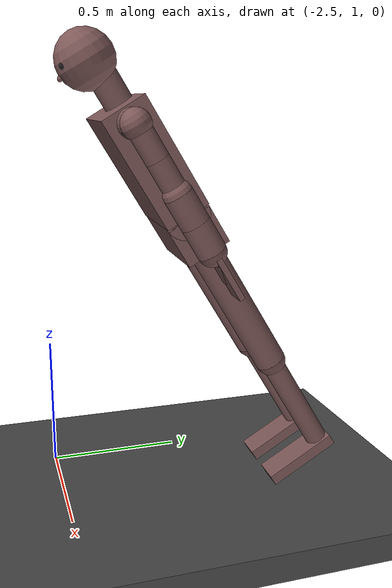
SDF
<sdf version="1.5">
 <world name="default">
  <model name="ground_plane">
   <static>1</static>
   <link name="link">
    <collision name="collision">
     <geometry><plane><normal>0 0 1</normal><size>100 100</size></plane></geometry>
     <surface><friction><ode><mu>100</mu><mu2>50</mu2></ode></friction></surface>
    </collision>
    <visual name="visual">
     <cast_shadows>0</cast_shadows>
     <geometry><plane><normal>0 0 1</normal><size>100 100</size></plane></geometry>
     <material>
      <script><uri>file://media/materials/scripts/gazebo.material</uri><name>Gazebo/Grey</name></script>
     </material>
    </visual>
    <velocity_decay><linear>0</linear><angular>0</angular></velocity_decay>
   </link>
  </model>
  <model name="asphalt_plane">
   <static>1</static>
   <link name="link">
    <collision name="collision"><geometry><box><size>20 20 0.1</size></box></geometry></collision>
    <visual name="visual">
     <cast_shadows>0</cast_shadows>
     <geometry><box><size>20 20 0.1</size></box></geometry>
     <material>
      <script>
       <uri>model://asphalt_plane/materials/scripts</uri>
       <uri>model://asphalt_plane/materials/textures</uri>
       <name>vrc/asphalt</name>
      </script>
     </material>
    </visual>
    <velocity_decay><linear>0</linear><angular>0</angular></velocity_decay>
   </link>
   <pose>0.076733 -0.110379 0 0 -0 0</pose>
  </model>
  <model name="victim175_hot_moving_0">
   <static>0</static>
   <self_collide>1</self_collide>
   <link name="head">
    <pose>0 0 1.625 0 -0 0</pose>
    <visual name="visual">
     <geometry><sphere><radius>0.1</radius></sphere></geometry>
     <material>
      <emissive>0.5 0.35 0.35 1</emissive>
      <ambient>0.5 0.35 0.35 1</ambient>
      <diffuse>0.5 0.35 0.35 1</diffuse>
      <specular>0 0 0 0</specular>
     </material>
    </visual>
    <collision name="collision"><geometry><sphere><radius>0.1</radius></sphere></geometry></collision>
    <visual name="visual_nose">
     <pose>0 -0.1 -0.01 0 -0 0</pose>
     <geometry><sphere><radius>0.01</radius></sphere></geometry>
     <material>
      <emissive>0.5 0.35 0.35 1</emissive>
      <ambient>0.5 0.35 0.35 1</ambient>
      <diffuse>0.5 0.35 0.35 1</diffuse>
      <specular>0 0 0 0</specular>
     </material>
    </visual>
    <visual name="visual_rEye">
     <pose>-0.05 -0.08 0.02 0 -0 0</pose>
     <geometry><sphere><radius>0.01</radius></sphere></geometry>
     <material>
      <script><uri>file://media/materials/scripts/gazebo.material</uri><name>Gazebo/Black</name></script>
     </material>
    </visual>
    <visual name="visual_lEye">
     <pose>0.05 -0.08 0.02 0 -0 0</pose>
     <geometry><sphere><radius>0.01</radius></sphere></geometry>
     <material>
      <script><uri>file://media/materials/scripts/gazebo.material</uri><name>Gazebo/Black</name></script>
     </material>
    </visual>
    <self_collide>1</self_collide>
    <inertial>
     <inertia><ixx>1</ixx><ixy>0</ixy><ixz>0</ixz><iyy>1</iyy><iyz>0</iyz><izz>1</izz></inertia>
     <mass>1</mass>
    </inertial>
   </link>
   <link name="neck">
    <pose>0 0.02 1.49 0 -0 0</pose>
    <visual name="visual">
     <geometry><cylinder><radius>0.05</radius><length>0.15</length></cylinder></geometry>
     <material>
      <emissive>0.5 0.35 0.35 1</emissive>
      <ambient>0.5 0.35 0.35 1</ambient>
      <diffuse>0.5 0.35 0.35 1</diffuse>
      <specular>0 0 0 0</specular>
     </material>
    </visual>
    <collision name="collision">
     <geometry><cylinder><radius>0.05</radius><length>0.15</length></cylinder></geometry>
    </collision>
    <self_collide>1</self_collide>
    <inertial>
     <inertia><ixx>1</ixx><ixy>0</ixy><ixz>0</ixz><iyy>1</iyy><iyz>0</iyz><izz>1</izz></inertia>
     <mass>1</mass>
    </inertial>
   </link>
   <joint name="neck_head" type="revolute">
    <pose>0 0.02 -0.075 0 -0 0</pose>
    <child>head</child>
    <parent>neck</parent>
    <axis>
     <xyz>0 0 -1</xyz>
     <limit><lower>-1.7</lower><upper>1.7</upper></limit>
     <dynamics>
      <friction>0.01</friction>
      <spring_reference>0</spring_reference>
      <spring_stiffness>0</spring_stiffness>
     </dynamics>
     <use_parent_model_frame>0</use_parent_model_frame>
    </axis>
   </joint>
   <link name="body">
    <pose>0 0 1.255 0 -0 0</pose>
    <visual name="visual">
     <geometry><box><size>0.34 0.16 0.4</size></box></geometry>
     <material>
      <emissive>0.5 0.35 0.35 1</emissive>
      <ambient>0.5 0.35 0.35 1</ambient>
      <diffuse>0.5 0.35 0.35 1</diffuse>
      <specular>0 0 0 0</specular>
     </material>
    </visual>
    <collision name="collision"><geometry><box><size>0.34 0.16 0.4</size></box></geometry></collision>
    <self_collide>1</self_collide>
    <inertial>
     <inertia><ixx>1</ixx><ixy>0</ixy><ixz>0</ixz><iyy>1</iyy><iyz>0</iyz><izz>1</izz></inertia>
     <mass>1</mass>
    </inertial>
   </link>
   <joint name="body_neck" type="revolute">
    <pose>0 0.06 -0.075 0 -0 0</pose>
    <child>neck</child>
    <parent>body</parent>
    <axis>
     <xyz>1 0 0</xyz>
     <limit><lower>-0.2</lower><upper>1</upper></limit>
     <dynamics>
      <friction>0.01</friction>
      <spring_reference>0</spring_reference>
      <spring_stiffness>0</spring_stiffness>
     </dynamics>
     <use_parent_model_frame>0</use_parent_model_frame>
    </axis>
   </joint>
   <link name="waist">
    <pose>0 0 1.005 0 -0 0</pose>
    <visual name="visual">
     <pose>0 0 -0.025 0 -0 0</pose>
     <geometry><box><size>0.31 0.16 0.15</size></box></geometry>
     <material>
      <emissive>0.5 0.35 0.35 1</emissive>
      <ambient>0.5 0.35 0.35 1</ambient>
      <diffuse>0.5 0.35 0.35 1</diffuse>
      <specular>0 0 0 0</specular>
     </material>
    </visual>
    <collision name="collision"><geometry><box><size>0.31 0.16 0.1</size></box></geometry></collision>
    <visual name="visual2">
     <pose>0 0 0.05 -3e-06 1.57079 -3e-06</pose>
     <geometry><cylinder><radius>0.08</radius><length>0.31</length></cylinder></geometry>
     <material>
      <emissive>0.5 0.35 0.35 1</emissive>
      <ambient>0.5 0.35 0.35 1</ambient>
      <diffuse>0.5 0.35 0.35 1</diffuse>
      <specular>0 0 0 0</specular>
     </material>
    </visual>
    <collision name="collision2">
     <pose>0 0 0.05 -3e-06 1.57079 -3e-06</pose>
     <geometry><cylinder><radius>0.08</radius><length>0.31</length></cylinder></geometry>
    </collision>
    <self_collide>1</self_collide>
    <inertial>
     <inertia><ixx>1</ixx><ixy>0</ixy><ixz>0</ixz><iyy>1</iyy><iyz>0</iyz><izz>1</izz></inertia>
     <mass>1</mass>
    </inertial>
   </link>
   <joint name="body_waist" type="revolute">
    <pose>0 0 0.05 0 -0 0</pose>
    <child>waist</child>
    <parent>body</parent>
    <axis>
     <xyz>-1 0 0</xyz>
     <limit><lower>0</lower><upper>0</upper></limit>
     <dynamics>
      <friction>0.01</friction>
      <spring_reference>0</spring_reference>
      <spring_stiffness>0</spring_stiffness>
     </dynamics>
     <use_parent_model_frame>0</use_parent_model_frame>
    </axis>
   </joint>
   <link name="rHand">
    <pose>-0.22 0 0.84 0 -0 0</pose>
    <visual name="visual">
     <geometry><box><size>0.09 0.02 0.18</size></box></geometry>
     <material>
      <emissive>0.5 0.35 0.35 1</emissive>
      <ambient>0.5 0.35 0.35 1</ambient>
      <diffuse>0.5 0.35 0.35 1</diffuse>
      <specular>0 0 0 0</specular>
     </material>
    </visual>
    <collision name="collision"><geometry><box><size>0.09 0.02 0.18</size></box></geometry></collision>
    <visual name="visual2">
     <pose>0.02 0 0 0 -0 0</pose>
     <geometry><box><size>0.12 0.02 0.09</size></box></geometry>
     <material>
      <emissive>0.5 0.35 0.35 1</emissive>
      <ambient>0.5 0.35 0.35 1</ambient>
      <diffuse>0.5 0.35 0.35 1</diffuse>
      <specular>0 0 0 0</specular>
     </material>
    </visual>
    <collision name="collision2">
     <pose>0.02 0 0 0 -0 0</pose>
     <geometry><box><size>0.12 0.02 0.09</size></box></geometry>
    </collision>
    <self_collide>1</self_collide>
    <inertial>
     <inertia><ixx>1</ixx><ixy>0</ixy><ixz>0</ixz><iyy>1</iyy><iyz>0</iyz><izz>1</izz></inertia>
     <mass>1</mass>
    </inertial>
   </link>
   <link name="lHand">
    <pose>0.22 0 0.84 0 -0 0</pose>
    <visual name="visual">
     <geometry><box><size>0.09 0.02 0.18</size></box></geometry>
     <material>
      <emissive>0.5 0.35 0.35 1</emissive>
      <ambient>0.5 0.35 0.35 1</ambient>
      <diffuse>0.5 0.35 0.35 1</diffuse>
      <specular>0 0 0 0</specular>
     </material>
    </visual>
    <collision name="collision"><geometry><box><size>0.09 0.02 0.18</size></box></geometry></collision>
    <visual name="visual2">
     <pose>-0.02 0 0 0 -0 0</pose>
     <geometry><box><size>0.12 0.02 0.09</size></box></geometry>
     <material>
      <emissive>0.5 0.35 0.35 1</emissive>
      <ambient>0.5 0.35 0.35 1</ambient>
      <diffuse>0.5 0.35 0.35 1</diffuse>
      <specular>0 0 0 0</specular>
     </material>
    </visual>
    <collision name="collision2">
     <pose>-0.02 0 0 0 -0 0</pose>
     <geometry><box><size>0.12 0.02 0.09</size></box></geometry>
    </collision>
    <self_collide>1</self_collide>
    <inertial>
     <inertia><ixx>1</ixx><ixy>0</ixy><ixz>0</ixz><iyy>1</iyy><iyz>0</iyz><izz>1</izz></inertia>
     <mass>1</mass>
    </inertial>
   </link>
   <link name="rFoot">
    <pose>-0.1 -0.095 0.02 0 -0 0</pose>
    <visual name="visual">
     <geometry><box><size>0.1 0.27 0.04</size></box></geometry>
     <material>
      <emissive>0.5 0.35 0.35 1</emissive>
      <ambient>0.5 0.35 0.35 1</ambient>
      <diffuse>0.5 0.35 0.35 1</diffuse>
      <specular>0 0 0 0</specular>
     </material>
    </visual>
    <collision name="collision"><geometry><box><size>0.1 0.27 0.04</size></box></geometry></collision>
    <self_collide>1</self_collide>
    <inertial>
     <inertia><ixx>1</ixx><ixy>0</ixy><ixz>0</ixz><iyy>1</iyy><iyz>0</iyz><izz>1</izz></inertia>
     <mass>1</mass>
    </inertial>
   </link>
   <link name="lFoot">
    <pose>0.1 -0.095 0.02 0 -0 0</pose>
    <visual name="visual">
     <geometry><box><size>0.1 0.27 0.04</size></box></geometry>
     <material>
      <emissive>0.5 0.35 0.35 1</emissive>
      <ambient>0.5 0.35 0.35 1</ambient>
      <diffuse>0.5 0.35 0.35 1</diffuse>
      <specular>0 0 0 0</specular>
     </material>
    </visual>
    <collision name="collision"><geometry><box><size>0.1 0.27 0.04</size></box></geometry></collision>
    <self_collide>1</self_collide>
    <inertial>
     <inertia><ixx>1</ixx><ixy>0</ixy><ixz>0</ixz><iyy>1</iyy><iyz>0</iyz><izz>1</izz></inertia>
     <mass>1</mass>
    </inertial>
   </link>
   <link name="rLeg2">
    <pose>-0.1 0 0.23 0 -0 0</pose>
    <visual name="visual">
     <geometry><cylinder><radius>0.04</radius><length>0.38</length></cylinder></geometry>
     <material>
      <emissive>0.5 0.35 0.35 1</emissive>
      <ambient>0.5 0.35 0.35 1</ambient>
      <diffuse>0.5 0.35 0.35 1</diffuse>
      <specular>0 0 0 0</specular>
     </material>
    </visual>
    <collision name="collision">
     <geometry><cylinder><radius>0.04</radius><length>0.38</length></cylinder></geometry>
    </collision>
    <visual name="visual2">
     <pose>0 0 -0.19 0 -0 0</pose>
     <geometry><sphere><radius>0.04</radius></sphere></geometry>
     <material>
      <emissive>0.5 0.35 0.35 1</emissive>
      <ambient>0.5 0.35 0.35 1</ambient>
      <diffuse>0.5 0.35 0.35 1</diffuse>
      <specular>0 0 0 0</specular>
     </material>
    </visual>
    <collision name="collision2">
     <pose>0 0 -0.19 0 -0 0</pose>
     <geometry><sphere><radius>0.04</radius></sphere></geometry>
    </collision>
    <self_collide>1</self_collide>
    <inertial>
     <inertia><ixx>1</ixx><ixy>0</ixy><ixz>0</ixz><iyy>1</iyy><iyz>0</iyz><izz>1</izz></inertia>
     <mass>1</mass>
    </inertial>
   </link>
   <link name="lLeg2">
    <pose>0.1 0 0.23 0 -0 0</pose>
    <visual name="visual">
     <geometry><cylinder><radius>0.04</radius><length>0.38</length></cylinder></geometry>
     <material>
      <emissive>0.5 0.35 0.35 1</emissive>
      <ambient>0.5 0.35 0.35 1</ambient>
      <diffuse>0.5 0.35 0.35 1</diffuse>
      <specular>0 0 0 0</specular>
     </material>
    </visual>
    <collision name="collision">
     <geometry><cylinder><radius>0.04</radius><length>0.38</length></cylinder></geometry>
    </collision>
    <visual name="visual2">
     <pose>0 0 -0.19 0 -0 0</pose>
     <geometry><sphere><radius>0.04</radius></sphere></geometry>
     <material>
      <emissive>0.5 0.35 0.35 1</emissive>
      <ambient>0.5 0.35 0.35 1</ambient>
      <diffuse>0.5 0.35 0.35 1</diffuse>
      <specular>0 0 0 0</specular>
     </material>
    </visual>
    <collision name="collision2">
     <pose>0 0 -0.19 0 -0 0</pose>
     <geometry><sphere><radius>0.04</radius></sphere></geometry>
    </collision>
    <self_collide>1</self_collide>
    <inertial>
     <inertia><ixx>1</ixx><ixy>0</ixy><ixz>0</ixz><iyy>1</iyy><iyz>0</iyz><izz>1</izz></inertia>
     <mass>1</mass>
    </inertial>
   </link>
   <joint name="rLeg2_rFoot" type="revolute">
    <pose>0 0.095 0.02 0 -0 0</pose>
    <child>rFoot</child>
    <parent>rLeg2</parent>
    <axis>
     <xyz>1 0 0</xyz>
     <limit><lower>0</lower><upper>0</upper></limit>
     <dynamics>
      <friction>0.01</friction>
      <spring_reference>0</spring_reference>
      <spring_stiffness>0</spring_stiffness>
     </dynamics>
     <use_parent_model_frame>0</use_parent_model_frame>
    </axis>
   </joint>
   <joint name="lLeg2_lFoot" type="revolute">
    <pose>0 0.095 0.02 0 -0 0</pose>
    <child>lFoot</child>
    <parent>lLeg2</parent>
    <axis>
     <xyz>1 0 0</xyz>
     <limit><lower>0</lower><upper>0</upper></limit>
     <dynamics>
      <friction>0.01</friction>
      <spring_reference>0</spring_reference>
      <spring_stiffness>0</spring_stiffness>
     </dynamics>
     <use_parent_model_frame>0</use_parent_model_frame>
    </axis>
   </joint>
   <link name="rLeg1">
    <pose>-0.1 0 0.66 0 -0 0</pose>
    <visual name="visual">
     <geometry><cylinder><radius>0.055</radius><length>0.48</length></cylinder></geometry>
     <material>
      <emissive>0.5 0.35 0.35 1</emissive>
      <ambient>0.5 0.35 0.35 1</ambient>
      <diffuse>0.5 0.35 0.35 1</diffuse>
      <specular>0 0 0 0</specular>
     </material>
    </visual>
    <collision name="collision">
     <geometry><cylinder><radius>0.055</radius><length>0.48</length></cylinder></geometry>
    </collision>
    <visual name="visual2">
     <pose>0 0 -0.24 0 -0 0</pose>
     <geometry><sphere><radius>0.055</radius></sphere></geometry>
     <material>
      <emissive>0.5 0.35 0.35 1</emissive>
      <ambient>0.5 0.35 0.35 1</ambient>
      <diffuse>0.5 0.35 0.35 1</diffuse>
      <specular>0 0 0 0</specular>
     </material>
    </visual>
    <collision name="collision2">
     <pose>0 0 -0.24 0 -0 0</pose>
     <geometry><sphere><radius>0.055</radius></sphere></geometry>
    </collision>
    <visual name="visual3">
     <pose>0 0 0.24 0 -0 0</pose>
     <geometry><sphere><radius>0.055</radius></sphere></geometry>
     <material>
      <emissive>0.5 0.35 0.35 1</emissive>
      <ambient>0.5 0.35 0.35 1</ambient>
      <diffuse>0.5 0.35 0.35 1</diffuse>
      <specular>0 0 0 0</specular>
     </material>
    </visual>
    <collision name="collision3">
     <pose>0 0 0.24 0 -0 0</pose>
     <geometry><sphere><radius>0.055</radius></sphere></geometry>
    </collision>
    <self_collide>1</self_collide>
    <inertial>
     <inertia><ixx>1</ixx><ixy>0</ixy><ixz>0</ixz><iyy>1</iyy><iyz>0</iyz><izz>1</izz></inertia>
     <mass>1</mass>
    </inertial>
   </link>
   <link name="lLeg1">
    <pose>0.1 0 0.66 0 -0 0</pose>
    <visual name="visual">
     <geometry><cylinder><radius>0.055</radius><length>0.48</length></cylinder></geometry>
     <material>
      <emissive>0.5 0.35 0.35 1</emissive>
      <ambient>0.5 0.35 0.35 1</ambient>
      <diffuse>0.5 0.35 0.35 1</diffuse>
      <specular>0 0 0 0</specular>
     </material>
    </visual>
    <collision name="collision">
     <geometry><cylinder><radius>0.055</radius><length>0.48</length></cylinder></geometry>
    </collision>
    <visual name="visual2">
     <pose>0 0 -0.24 0 -0 0</pose>
     <geometry><sphere><radius>0.055</radius></sphere></geometry>
     <material>
      <emissive>0.5 0.35 0.35 1</emissive>
      <ambient>0.5 0.35 0.35 1</ambient>
      <diffuse>0.5 0.35 0.35 1</diffuse>
      <specular>0 0 0 0</specular>
     </material>
    </visual>
    <collision name="collision2">
     <pose>0 0 -0.24 0 -0 0</pose>
     <geometry><sphere><radius>0.055</radius></sphere></geometry>
    </collision>
    <visual name="visual3">
     <pose>0 0 0.24 0 -0 0</pose>
     <geometry><sphere><radius>0.055</radius></sphere></geometry>
     <material>
      <emissive>0.5 0.35 0.35 1</emissive>
      <ambient>0.5 0.35 0.35 1</ambient>
      <diffuse>0.5 0.35 0.35 1</diffuse>
      <specular>0 0 0 0</specular>
     </material>
    </visual>
    <collision name="collision3">
     <pose>0 0 0.24 0 -0 0</pose>
     <geometry><sphere><radius>0.055</radius></sphere></geometry>
    </collision>
    <self_collide>1</self_collide>
    <inertial>
     <inertia><ixx>1</ixx><ixy>0</ixy><ixz>0</ixz><iyy>1</iyy><iyz>0</iyz><izz>1</izz></inertia>
     <mass>1</mass>
    </inertial>
   </link>
   <joint name="rLeg1_rLeg2" type="revolute">
    <pose>0 0 0.19 0 -0 0</pose>
    <child>rLeg2</child>
    <parent>rLeg1</parent>
    <axis>
     <xyz>1 0 0</xyz>
     <limit><lower>0</lower><upper>0</upper></limit>
     <dynamics>
      <friction>0.01</friction>
      <spring_reference>0</spring_reference>
      <spring_stiffness>0</spring_stiffness>
     </dynamics>
     <use_parent_model_frame>0</use_parent_model_frame>
    </axis>
   </joint>
   <joint name="lLeg1_lLeg2" type="revolute">
    <pose>0 0 0.19 0 -0 0</pose>
    <child>lLeg2</child>
    <parent>lLeg1</parent>
    <axis>
     <xyz>1 0 0</xyz>
     <limit><lower>0</lower><upper>0</upper></limit>
     <dynamics>
      <friction>0.01</friction>
      <spring_reference>0</spring_reference>
      <spring_stiffness>0</spring_stiffness>
     </dynamics>
     <use_parent_model_frame>0</use_parent_model_frame>
    </axis>
   </joint>
   <link name="rButt">
    <pose>-0.1 0 0.9275 0 -0 0</pose>
    <visual name="visual">
     <geometry><cylinder><radius>0.055</radius><length>0.055</length></cylinder></geometry>
     <material>
      <emissive>0.5 0.35 0.35 1</emissive>
      <ambient>0.5 0.35 0.35 1</ambient>
      <diffuse>0.5 0.35 0.35 1</diffuse>
      <specular>0 0 0 0</specular>
     </material>
    </visual>
    <collision name="collision">
     <geometry><cylinder><radius>0.055</radius><length>0.055</length></cylinder></geometry>
    </collision>
    <self_collide>1</self_collide>
    <inertial>
     <inertia><ixx>1</ixx><ixy>0</ixy><ixz>0</ixz><iyy>1</iyy><iyz>0</iyz><izz>1</izz></inertia>
     <mass>1</mass>
    </inertial>
   </link>
   <link name="lButt">
    <pose>0.1 0 0.9275 0 -0 0</pose>
    <visual name="visual">
     <geometry><cylinder><radius>0.055</radius><length>0.055</length></cylinder></geometry>
     <material>
      <emissive>0.5 0.35 0.35 1</emissive>
      <ambient>0.5 0.35 0.35 1</ambient>
      <diffuse>0.5 0.35 0.35 1</diffuse>
      <specular>0 0 0 0</specular>
     </material>
    </visual>
    <collision name="collision">
     <geometry><cylinder><radius>0.055</radius><length>0.055</length></cylinder></geometry>
    </collision>
    <self_collide>1</self_collide>
    <inertial>
     <inertia><ixx>1</ixx><ixy>0</ixy><ixz>0</ixz><iyy>1</iyy><iyz>0</iyz><izz>1</izz></inertia>
     <mass>1</mass>
    </inertial>
   </link>
   <joint name="rButt_rLeg1" type="revolute">
    <pose>0 0 0.24 0 -0 0</pose>
    <child>rLeg1</child>
    <parent>rButt</parent>
    <axis>
     <xyz>1 0 0</xyz>
     <limit><lower>0</lower><upper>0</upper></limit>
     <dynamics>
      <friction>0.01</friction>
      <spring_reference>0</spring_reference>
      <spring_stiffness>0</spring_stiffness>
     </dynamics>
     <use_parent_model_frame>0</use_parent_model_frame>
    </axis>
   </joint>
   <joint name="lButt_lLeg1" type="revolute">
    <pose>0 0 0.24 0 -0 0</pose>
    <child>lLeg1</child>
    <parent>lButt</parent>
    <axis>
     <xyz>1 0 0</xyz>
     <limit><lower>0</lower><upper>0</upper></limit>
     <dynamics>
      <friction>0.01</friction>
      <spring_reference>0</spring_reference>
      <spring_stiffness>0</spring_stiffness>
     </dynamics>
     <use_parent_model_frame>0</use_parent_model_frame>
    </axis>
   </joint>
   <joint name="waist_rButt" type="revolute">
    <child>rButt</child>
    <parent>waist</parent>
    <axis>
     <xyz>0 0 -1</xyz>
     <limit><lower>-1</lower><upper>1</upper></limit>
     <dynamics>
      <friction>0.01</friction>
      <spring_reference>0</spring_reference>
      <spring_stiffness>0</spring_stiffness>
     </dynamics>
     <use_parent_model_frame>0</use_parent_model_frame>
    </axis>
   </joint>
   <joint name="waist_lButt" type="revolute">
    <child>lButt</child>
    <parent>waist</parent>
    <axis>
     <xyz>0 0 1</xyz>
     <limit><lower>-1</lower><upper>1</upper></limit>
     <dynamics>
      <friction>0.01</friction>
      <spring_reference>0</spring_reference>
      <spring_stiffness>0</spring_stiffness>
     </dynamics>
     <use_parent_model_frame>0</use_parent_model_frame>
    </axis>
   </joint>
   <link name="rShoulder">
    <pose>-0.195 0 1.4 0 -0 0</pose>
    <visual name="visual">
     <pose>0 0 0 -3e-06 1.57079 -3e-06</pose>
     <geometry><cylinder><radius>0.05</radius><length>0.05</length></cylinder></geometry>
     <material>
      <emissive>0.5 0.35 0.35 1</emissive>
      <ambient>0.5 0.35 0.35 1</ambient>
      <diffuse>0.5 0.35 0.35 1</diffuse>
      <specular>0 0 0 0</specular>
     </material>
    </visual>
    <collision name="collision">
     <pose>0 0 0 -3e-06 1.57079 -3e-06</pose>
     <geometry><cylinder><radius>0.05</radius><length>0.05</length></cylinder></geometry>
    </collision>
    <self_collide>1</self_collide>
    <inertial>
     <inertia><ixx>1</ixx><ixy>0</ixy><ixz>0</ixz><iyy>1</iyy><iyz>0</iyz><izz>1</izz></inertia>
     <mass>1</mass>
    </inertial>
   </link>
   <link name="lShoulder">
    <pose>0.195 0 1.4 0 -0 0</pose>
    <visual name="visual">
     <pose>0 0 0 -3e-06 1.57079 -3e-06</pose>
     <geometry><cylinder><radius>0.05</radius><length>0.05</length></cylinder></geometry>
     <material>
      <emissive>0.5 0.35 0.35 1</emissive>
      <ambient>0.5 0.35 0.35 1</ambient>
      <diffuse>0.5 0.35 0.35 1</diffuse>
      <specular>0 0 0 0</specular>
     </material>
    </visual>
    <collision name="collision">
     <pose>0 0 0 -3e-06 1.57079 -3e-06</pose>
     <geometry><cylinder><radius>0.05</radius><length>0.05</length></cylinder></geometry>
    </collision>
    <self_collide>1</self_collide>
    <inertial>
     <inertia><ixx>1</ixx><ixy>0</ixy><ixz>0</ixz><iyy>1</iyy><iyz>0</iyz><izz>1</izz></inertia>
     <mass>1</mass>
    </inertial>
   </link>
   <joint name="body_rShoulder" type="revolute">
    <child>rShoulder</child>
    <parent>body</parent>
    <axis>
     <xyz>-1 0 0</xyz>
     <limit><lower>-1.5708</lower><upper>3.2</upper></limit>
     <dynamics>
      <friction>0.01</friction>
      <spring_reference>0</spring_reference>
      <spring_stiffness>0</spring_stiffness>
     </dynamics>
     <use_parent_model_frame>0</use_parent_model_frame>
    </axis>
   </joint>
   <joint name="body_lShoulder" type="revolute">
    <child>lShoulder</child>
    <parent>body</parent>
    <axis>
     <xyz>1 0 0</xyz>
     <limit><lower>-1.5708</lower><upper>3.2</upper></limit>
     <dynamics>
      <friction>0.01</friction>
      <spring_reference>0</spring_reference>
      <spring_stiffness>0</spring_stiffness>
     </dynamics>
     <use_parent_model_frame>0</use_parent_model_frame>
    </axis>
   </joint>
   <link name="rArm1U">
    <pose>-0.22 0 1.3375 0 -0 0</pose>
    <visual name="visual">
     <geometry><cylinder><radius>0.04</radius><length>0.125</length></cylinder></geometry>
     <material>
      <emissive>0.5 0.35 0.35 1</emissive>
      <ambient>0.5 0.35 0.35 1</ambient>
      <diffuse>0.5 0.35 0.35 1</diffuse>
      <specular>0 0 0 0</specular>
     </material>
    </visual>
    <collision name="collision">
     <geometry><cylinder><radius>0.04</radius><length>0.125</length></cylinder></geometry>
    </collision>
    <visual name="visual2">
     <pose>0 0 0.0625 0 -0 0</pose>
     <geometry><sphere><radius>0.05</radius></sphere></geometry>
     <material>
      <emissive>0.5 0.35 0.35 1</emissive>
      <ambient>0.5 0.35 0.35 1</ambient>
      <diffuse>0.5 0.35 0.35 1</diffuse>
      <specular>0 0 0 0</specular>
     </material>
    </visual>
    <collision name="collision2">
     <pose>0 0 0.0625 0 -0 0</pose>
     <geometry><sphere><radius>0.05</radius></sphere></geometry>
    </collision>
    <self_collide>1</self_collide>
    <inertial>
     <inertia><ixx>1</ixx><ixy>0</ixy><ixz>0</ixz><iyy>1</iyy><iyz>0</iyz><izz>1</izz></inertia>
     <mass>1</mass>
    </inertial>
   </link>
   <link name="rArm1L">
    <pose>-0.22 0 1.2125 0 -0 0</pose>
    <visual name="visual">
     <geometry><cylinder><radius>0.04</radius><length>0.125</length></cylinder></geometry>
     <material>
      <emissive>0.5 0.35 0.35 1</emissive>
      <ambient>0.5 0.35 0.35 1</ambient>
      <diffuse>0.5 0.35 0.35 1</diffuse>
      <specular>0 0 0 0</specular>
     </material>
    </visual>
    <collision name="collision">
     <geometry><cylinder><radius>0.04</radius><length>0.125</length></cylinder></geometry>
    </collision>
    <visual name="visual2">
     <pose>0 0 -0.0625 0 -0 0</pose>
     <geometry><sphere><radius>0.05</radius></sphere></geometry>
     <material>
      <emissive>0.5 0.35 0.35 1</emissive>
      <ambient>0.5 0.35 0.35 1</ambient>
      <diffuse>0.5 0.35 0.35 1</diffuse>
      <specular>0 0 0 0</specular>
     </material>
    </visual>
    <collision name="collision2">
     <pose>0 0 -0.0625 0 -0 0</pose>
     <geometry><sphere><radius>0.05</radius></sphere></geometry>
    </collision>
    <self_collide>1</self_collide>
    <inertial>
     <inertia><ixx>1</ixx><ixy>0</ixy><ixz>0</ixz><iyy>1</iyy><iyz>0</iyz><izz>1</izz></inertia>
     <mass>1</mass>
    </inertial>
   </link>
   <joint name="rArm1U_rArm1L" type="revolute">
    <pose>0 0 0.0625 0 -0 0</pose>
    <child>rArm1L</child>
    <parent>rArm1U</parent>
    <axis>
     <xyz>0 0 -1</xyz>
     <limit><lower>-1.5708</lower><upper>1.5708</upper></limit>
     <dynamics>
      <friction>0.01</friction>
      <spring_reference>0</spring_reference>
      <spring_stiffness>0</spring_stiffness>
     </dynamics>
     <use_parent_model_frame>0</use_parent_model_frame>
    </axis>
   </joint>
   <link name="lArm1U">
    <pose>0.22 0 1.3375 0 -0 0</pose>
    <visual name="visual">
     <geometry><cylinder><radius>0.04</radius><length>0.125</length></cylinder></geometry>
     <material>
      <emissive>0.5 0.35 0.35 1</emissive>
      <ambient>0.5 0.35 0.35 1</ambient>
      <diffuse>0.5 0.35 0.35 1</diffuse>
      <specular>0 0 0 0</specular>
     </material>
    </visual>
    <collision name="collision">
     <geometry><cylinder><radius>0.04</radius><length>0.125</length></cylinder></geometry>
    </collision>
    <visual name="visual2">
     <pose>0 0 0.0625 0 -0 0</pose>
     <geometry><sphere><radius>0.05</radius></sphere></geometry>
     <material>
      <emissive>0.5 0.35 0.35 1</emissive>
      <ambient>0.5 0.35 0.35 1</ambient>
      <diffuse>0.5 0.35 0.35 1</diffuse>
      <specular>0 0 0 0</specular>
     </material>
    </visual>
    <collision name="collision2">
     <pose>0 0 0.0625 0 -0 0</pose>
     <geometry><sphere><radius>0.05</radius></sphere></geometry>
    </collision>
    <self_collide>1</self_collide>
    <inertial>
     <inertia><ixx>1</ixx><ixy>0</ixy><ixz>0</ixz><iyy>1</iyy><iyz>0</iyz><izz>1</izz></inertia>
     <mass>1</mass>
    </inertial>
   </link>
   <link name="lArm1L">
    <pose>0.22 0 1.2125 0 -0 0</pose>
    <visual name="visual">
     <geometry><cylinder><radius>0.04</radius><length>0.125</length></cylinder></geometry>
     <material>
      <emissive>0.5 0.35 0.35 1</emissive>
      <ambient>0.5 0.35 0.35 1</ambient>
      <diffuse>0.5 0.35 0.35 1</diffuse>
      <specular>0 0 0 0</specular>
     </material>
    </visual>
    <collision name="collision">
     <geometry><cylinder><radius>0.04</radius><length>0.125</length></cylinder></geometry>
    </collision>
    <visual name="visual2">
     <pose>0 0 -0.0625 0 -0 0</pose>
     <geometry><sphere><radius>0.05</radius></sphere></geometry>
     <material>
      <emissive>0.5 0.35 0.35 1</emissive>
      <ambient>0.5 0.35 0.35 1</ambient>
      <diffuse>0.5 0.35 0.35 1</diffuse>
      <specular>0 0 0 0</specular>
     </material>
    </visual>
    <collision name="collision2">
     <pose>0 0 -0.0625 0 -0 0</pose>
     <geometry><sphere><radius>0.05</radius></sphere></geometry>
    </collision>
    <self_collide>1</self_collide>
    <inertial>
     <inertia><ixx>1</ixx><ixy>0</ixy><ixz>0</ixz><iyy>1</iyy><iyz>0</iyz><izz>1</izz></inertia>
     <mass>1</mass>
    </inertial>
   </link>
   <joint name="lArm1U_lArm1L" type="revolute">
    <pose>0 0 0.0625 0 -0 0</pose>
    <child>lArm1L</child>
    <parent>lArm1U</parent>
    <axis>
     <xyz>0 0 1</xyz>
     <limit><lower>-1.5708</lower><upper>1.5708</upper></limit>
     <dynamics>
      <friction>0.01</friction>
      <spring_reference>0</spring_reference>
      <spring_stiffness>0</spring_stiffness>
     </dynamics>
     <use_parent_model_frame>0</use_parent_model_frame>
    </axis>
   </joint>
   <joint name="rShoulder_rArm1" type="revolute">
    <pose>0 0 0.0625 0 -0 0</pose>
    <child>rArm1U</child>
    <parent>rShoulder</parent>
    <axis>
     <xyz>0 -1 0</xyz>
     <limit><lower>-1.5708</lower><upper>3.2</upper></limit>
     <dynamics>
      <friction>0.01</friction>
      <spring_reference>0</spring_reference>
      <spring_stiffness>0</spring_stiffness>
     </dynamics>
     <use_parent_model_frame>0</use_parent_model_frame>
    </axis>
   </joint>
   <joint name="lShoulder_lArm1" type="revolute">
    <pose>0 0 0.0625 0 -0 0</pose>
    <child>lArm1U</child>
    <parent>lShoulder</parent>
    <axis>
     <xyz>0 1 0</xyz>
     <limit><lower>-1.5708</lower><upper>3.2</upper></limit>
     <dynamics>
      <friction>0.01</friction>
      <spring_reference>0</spring_reference>
      <spring_stiffness>0</spring_stiffness>
     </dynamics>
     <use_parent_model_frame>0</use_parent_model_frame>
    </axis>
   </joint>
   <link name="rArm2U">
    <pose>-0.22 0 1.095 0 -0 0</pose>
    <visual name="visual">
     <geometry><cylinder><radius>0.05</radius><length>0.11</length></cylinder></geometry>
     <material>
      <emissive>0.5 0.35 0.35 1</emissive>
      <ambient>0.5 0.35 0.35 1</ambient>
      <diffuse>0.5 0.35 0.35 1</diffuse>
      <specular>0 0 0 0</specular>
     </material>
    </visual>
    <collision name="collision">
     <geometry><cylinder><radius>0.05</radius><length>0.11</length></cylinder></geometry>
    </collision>
    <self_collide>1</self_collide>
    <inertial>
     <inertia><ixx>1</ixx><ixy>0</ixy><ixz>0</ixz><iyy>1</iyy><iyz>0</iyz><izz>1</izz></inertia>
     <mass>1</mass>
    </inertial>
   </link>
   <link name="rArm2L">
    <pose>-0.22 0 0.985 0 -0 0</pose>
    <visual name="visual">
     <geometry><cylinder><radius>0.05</radius><length>0.11</length></cylinder></geometry>
     <material>
      <emissive>0.5 0.35 0.35 1</emissive>
      <ambient>0.5 0.35 0.35 1</ambient>
      <diffuse>0.5 0.35 0.35 1</diffuse>
      <specular>0 0 0 0</specular>
     </material>
    </visual>
    <collision name="collision">
     <geometry><cylinder><radius>0.05</radius><length>0.11</length></cylinder></geometry>
    </collision>
    <visual name="visual2">
     <pose>0 0 -0.055 0 -0 0</pose>
     <geometry><sphere><radius>0.05</radius></sphere></geometry>
     <material>
      <emissive>0.5 0.35 0.35 1</emissive>
      <ambient>0.5 0.35 0.35 1</ambient>
      <diffuse>0.5 0.35 0.35 1</diffuse>
      <specular>0 0 0 0</specular>
     </material>
    </visual>
    <collision name="collision2">
     <pose>0 0 -0.055 0 -0 0</pose>
     <geometry><sphere><radius>0.05</radius></sphere></geometry>
    </collision>
    <self_collide>1</self_collide>
    <inertial>
     <inertia><ixx>1</ixx><ixy>0</ixy><ixz>0</ixz><iyy>1</iyy><iyz>0</iyz><izz>1</izz></inertia>
     <mass>1</mass>
    </inertial>
   </link>
   <joint name="rArm2U_rArm2L" type="revolute">
    <pose>0 0 0.055 0 -0 0</pose>
    <child>rArm2L</child>
    <parent>rArm2U</parent>
    <axis>
     <xyz>0 0 -1</xyz>
     <limit><lower>-1.5708</lower><upper>1.5708</upper></limit>
     <dynamics>
      <friction>0.01</friction>
      <spring_reference>0</spring_reference>
      <spring_stiffness>0</spring_stiffness>
     </dynamics>
     <use_parent_model_frame>0</use_parent_model_frame>
    </axis>
   </joint>
   <link name="lArm2U">
    <pose>0.22 0 1.095 0 -0 0</pose>
    <visual name="visual">
     <geometry><cylinder><radius>0.05</radius><length>0.11</length></cylinder></geometry>
     <material>
      <emissive>0.5 0.35 0.35 1</emissive>
      <ambient>0.5 0.35 0.35 1</ambient>
      <diffuse>0.5 0.35 0.35 1</diffuse>
      <specular>0 0 0 0</specular>
     </material>
    </visual>
    <collision name="collision">
     <geometry><cylinder><radius>0.05</radius><length>0.11</length></cylinder></geometry>
    </collision>
    <self_collide>1</self_collide>
    <inertial>
     <inertia><ixx>1</ixx><ixy>0</ixy><ixz>0</ixz><iyy>1</iyy><iyz>0</iyz><izz>1</izz></inertia>
     <mass>1</mass>
    </inertial>
   </link>
   <link name="lArm2L">
    <pose>0.22 0 0.985 0 -0 0</pose>
    <visual name="visual">
     <geometry><cylinder><radius>0.05</radius><length>0.11</length></cylinder></geometry>
     <material>
      <emissive>0.5 0.35 0.35 1</emissive>
      <ambient>0.5 0.35 0.35 1</ambient>
      <diffuse>0.5 0.35 0.35 1</diffuse>
      <specular>0 0 0 0</specular>
     </material>
    </visual>
    <collision name="collision">
     <geometry><cylinder><radius>0.05</radius><length>0.11</length></cylinder></geometry>
    </collision>
    <visual name="visual2">
     <pose>0 0 -0.055 0 -0 0</pose>
     <geometry><sphere><radius>0.05</radius></sphere></geometry>
     <material>
      <emissive>0.5 0.35 0.35 1</emissive>
      <ambient>0.5 0.35 0.35 1</ambient>
      <diffuse>0.5 0.35 0.35 1</diffuse>
      <specular>0 0 0 0</specular>
     </material>
    </visual>
    <collision name="collision2">
     <pose>0 0 -0.055 0 -0 0</pose>
     <geometry><sphere><radius>0.05</radius></sphere></geometry>
    </collision>
    <self_collide>1</self_collide>
    <inertial>
     <inertia><ixx>1</ixx><ixy>0</ixy><ixz>0</ixz><iyy>1</iyy><iyz>0</iyz><izz>1</izz></inertia>
     <mass>1</mass>
    </inertial>
   </link>
   <joint name="lArm2U_lArm2L" type="revolute">
    <pose>0 0 0.055 0 -0 0</pose>
    <child>lArm2L</child>
    <parent>lArm2U</parent>
    <axis>
     <xyz>0 0 1</xyz>
     <limit><lower>-1.5708</lower><upper>1.5708</upper></limit>
     <dynamics>
      <friction>0.01</friction>
      <spring_reference>0</spring_reference>
      <spring_stiffness>0</spring_stiffness>
     </dynamics>
     <use_parent_model_frame>0</use_parent_model_frame>
    </axis>
   </joint>
   <joint name="rArm1_rArm2" type="revolute">
    <pose>0 0 0.055 0 -0 0</pose>
    <child>rArm2U</child>
    <parent>rArm1L</parent>
    <axis>
     <xyz>-1 0 0</xyz>
     <limit><lower>0</lower><upper>2.8</upper></limit>
     <dynamics>
      <friction>0.01</friction>
      <spring_reference>0</spring_reference>
      <spring_stiffness>0</spring_stiffness>
     </dynamics>
     <use_parent_model_frame>0</use_parent_model_frame>
    </axis>
   </joint>
   <joint name="lArm1_lArm2" type="revolute">
    <pose>0 0 0.055 0 -0 0</pose>
    <child>lArm2U</child>
    <parent>lArm1L</parent>
    <axis>
     <xyz>-1 0 0</xyz>
     <limit><lower>0</lower><upper>2.8</upper></limit>
     <dynamics>
      <friction>0.01</friction>
      <spring_reference>0</spring_reference>
      <spring_stiffness>0</spring_stiffness>
     </dynamics>
     <use_parent_model_frame>0</use_parent_model_frame>
    </axis>
   </joint>
   <joint name="rArm2_rHand" type="revolute">
    <pose>0 0 0.09 0 -0 0</pose>
    <child>rHand</child>
    <parent>rArm2L</parent>
    <axis>
     <xyz>-1 0 0</xyz>
     <limit><lower>-1.57</lower><upper>1.4</upper></limit>
     <dynamics>
      <friction>0.01</friction>
      <spring_reference>0</spring_reference>
      <spring_stiffness>0</spring_stiffness>
     </dynamics>
     <use_parent_model_frame>0</use_parent_model_frame>
    </axis>
   </joint>
   <joint name="lArm2_lHand" type="revolute">
    <pose>0 0 0.09 0 -0 0</pose>
    <child>lHand</child>
    <parent>lArm2L</parent>
    <axis>
     <xyz>-1 0 0</xyz>
     <limit><lower>-1.57</lower><upper>1.4</upper></limit>
     <dynamics>
      <friction>0.01</friction>
      <spring_reference>0</spring_reference>
      <spring_stiffness>0</spring_stiffness>
     </dynamics>
     <use_parent_model_frame>0</use_parent_model_frame>
    </axis>
   </joint>
   <joint name="world_rFoot" type="revolute">
    <child>rFoot</child>
    <parent>world</parent>
    <axis>
     <xyz>0 0 1</xyz>
     <limit><lower>0</lower><upper>0</upper></limit>
     <use_parent_model_frame>0</use_parent_model_frame>
     <dynamics><spring_reference>0</spring_reference><spring_stiffness>0</spring_stiffness></dynamics>
    </axis>
   </joint>
   <joint name="world_lFoot" type="revolute">
    <child>lFoot</child>
    <parent>world</parent>
    <axis>
     <xyz>0 0 1</xyz>
     <limit><lower>0</lower><upper>0</upper></limit>
     <use_parent_model_frame>0</use_parent_model_frame>
     <dynamics><spring_reference>0</spring_reference><spring_stiffness>0</spring_stiffness></dynamics>
    </axis>
   </joint>
   <plugin name="setJointAngle" filename="libset_joint_angle.so">
    <robotNamespace>victim175_hot_moving</robotNamespace>
    <alwaysOn>true</alwaysOn>
    <updateRate>100.0</updateRate>
    <angleName0>neck_head</angleName0>
    <angleName1>body_neck</angleName1>
    <angleName2>body_waist</angleName2>
    <angleName3>rLeg2_rFoot</angleName3>
    <angleName4>lLeg2_lFoot</angleName4>
    <angleName5>rLeg1_rLeg2</angleName5>
    <angleName6>lLeg1_lLeg2</angleName6>
    <angleName7>rButt_rLeg1</angleName7>
    <angleName8>lButt_lLeg1</angleName8>
    <angleName9>waist_rButt</angleName9>
    <angleName10>waist_lButt</angleName10>
    <angleName11>body_rShoulder</angleName11>
    <angleName12>body_lShoulder</angleName12>
    <angleName13>rArm1U_rArm1L</angleName13>
    <angleName14>lArm1U_lArm1L</angleName14>
    <angleName15>rShoulder_rArm1</angleName15>
    <angleName16>lShoulder_lArm1</angleName16>
    <angleName17>rArm2U_rArm2L</angleName17>
    <angleName18>lArm2U_lArm2L</angleName18>
    <angleName19>rArm1_rArm2</angleName19>
    <angleName20>lArm1_lArm2</angleName20>
    <angleName21>rArm2_rHand</angleName21>
    <angleName22>lArm2_lHand</angleName22>
    <maxAngles>23</maxAngles>
    <neck_head>10</neck_head>
    <body_neck>0.0</body_neck>
    <body_waist>0.0</body_waist>
    <rLeg2_rFoot>0.0</rLeg2_rFoot>
    <lLeg2_lFoot>0.0</lLeg2_lFoot>
    <rLeg1_rLeg2>0.0</rLeg1_rLeg2>
    <lLeg1_lLeg2>0.0</lLeg1_lLeg2>
    <rButt_rLeg1>0.0</rButt_rLeg1>
    <lButt_lLeg1>0.0</lButt_lLeg1>
    <waist_rButt>0.0</waist_rButt>
    <waist_lButt>0.0</waist_lButt>
    <body_rShoulder>45</body_rShoulder>
    <body_lShoulder>0.0</body_lShoulder>
    <rArm1U_rArm1L>-5</rArm1U_rArm1L>
    <lArm1U_lArm1L>0.0</lArm1U_lArm1L>
    <rShoulder_rArm1>0.0</rShoulder_rArm1>
    <lShoulder_lArm1>0.0</lShoulder_lArm1>
    <rArm2U_rArm2L>0.0</rArm2U_rArm2L>
    <lArm2U_lArm2L>90.0</lArm2U_lArm2L>
    <rArm1_rArm2>90</rArm1_rArm2>
    <lArm1_lArm2>0.0</lArm1_lArm2>
    <rArm2_rHand>45</rArm2_rHand>
    <lArm2_lHand>0.0</lArm2_lHand>
    <moveOn>1</moveOn>
    <moveJoint>13</moveJoint>
    <moveAngleWidth>30</moveAngleWidth>
   </plugin>
   <pose>-2.09211 1.9524 0.170632 0.542223 0.014318 -0.023855</pose>
  </model>
 </world>
</sdf>
